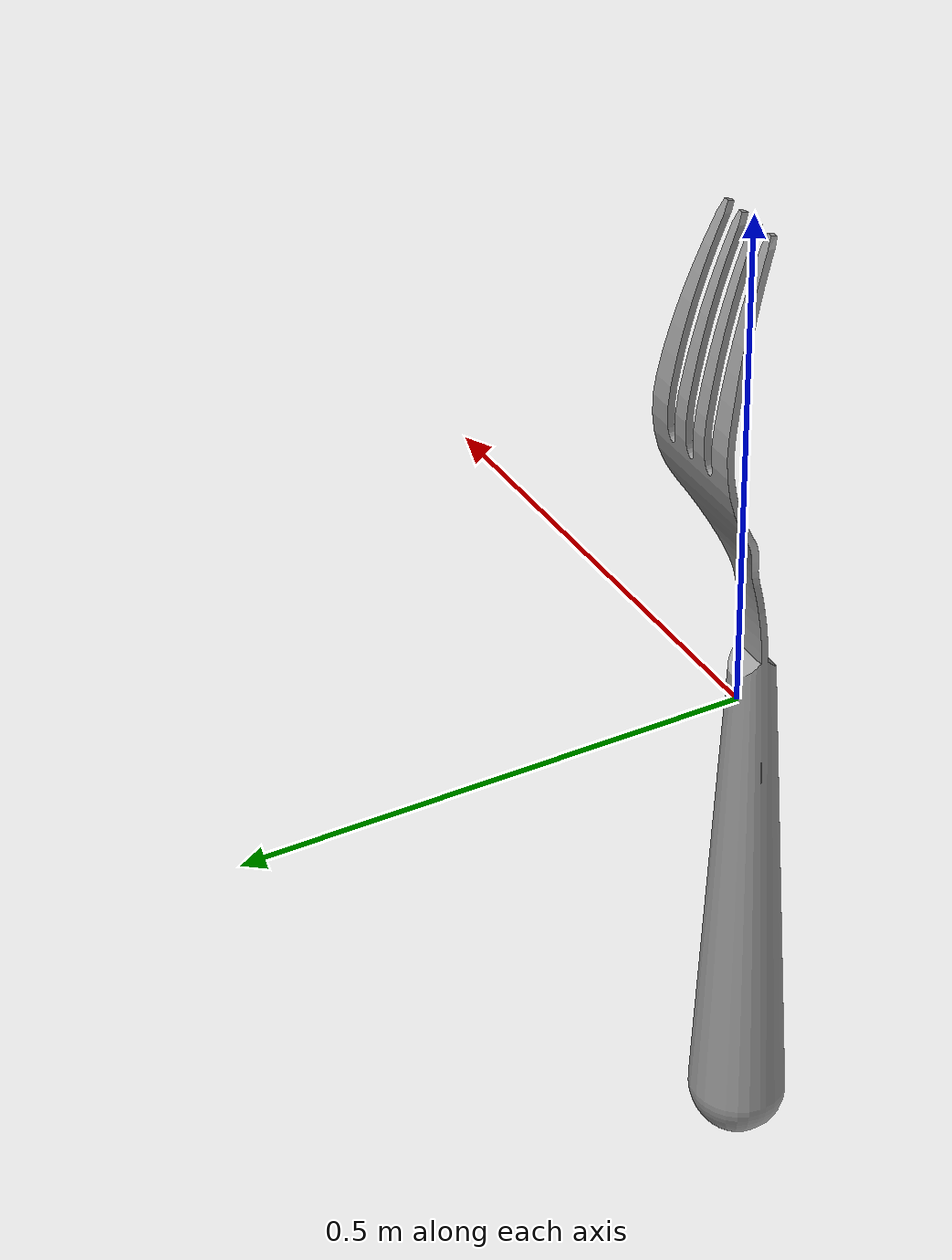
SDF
<?xml version="1.0" ?>
<sdf version="1.5">
  <model name='cutlery6'>
    <pose>0 0 0 0 0 0</pose>
    <static>1</static>
    <link name='body'>
      <collision name="cutlery6-coll">
        <pose>0 0 -0.5 0 0 0</pose>
        <geometry>
          <mesh>
            <uri>model://cutlery6/meshes/cutlery6.dae</uri>
          </mesh>
        </geometry>
      </collision>
      <visual name='cutlery6'>
        <cast_shadows>1</cast_shadows>
        <pose>0 0 -0.5 0 0 0</pose>
        <geometry>
          <mesh>
            <uri>model://cutlery6/meshes/cutlery6.dae</uri>
          </mesh>
        </geometry>
      </visual>
      <velocity_decay>
        <linear>0</linear>
        <angular>0</angular>
      </velocity_decay>
      <self_collide>0</self_collide>
      <kinematic>0</kinematic>
      <gravity>1</gravity>
    </link>
  </model>

</sdf>
